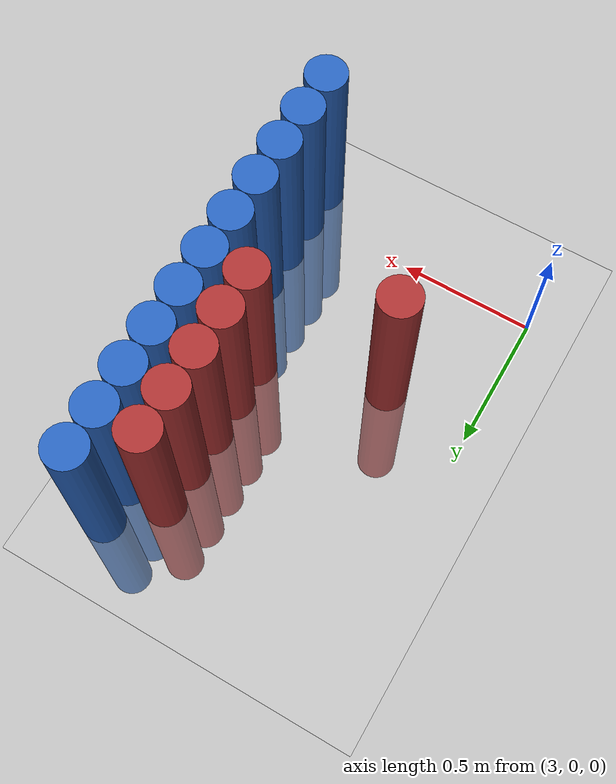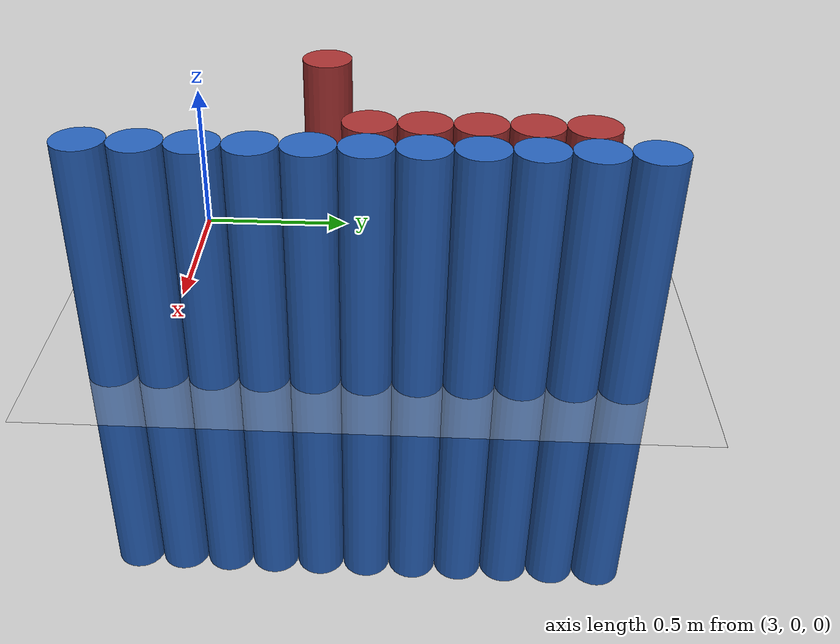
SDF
<sdf version="1.6">
 <world name="default">
  <model name="ground_plane">
   <static>1</static>
   <link name="link">
    <collision name="collision">
     <geometry><plane><normal>0 0 1</normal><size>100 100</size></plane></geometry>
     <surface><friction><ode><mu>100</mu><mu2>50</mu2></ode></friction></surface>
    </collision>
    <visual name="visual">
     <cast_shadows>0</cast_shadows>
     <geometry><plane><normal>0 0 1</normal><size>100 100</size></plane></geometry>
     <material>
      <script><uri>file://media/materials/scripts/gazebo.material</uri><name>Gazebo/Grey</name></script>
     </material>
    </visual>
   </link>
  </model>
  <model name="unit_cylinder_112">
   <static>1</static>
   <pose>3.925000 -0.125000 0.000000 0.000000 0.000000 0.000000</pose>
   <link name="link">
    <inertial>
     <mass>1</mass>
     <inertia><ixx>0.145833</ixx><ixy>0</ixy><ixz>0</ixz><iyy>0.145833</iyy><iyz>0</iyz><izz>0.125</izz></inertia>
    </inertial>
    <collision name="collision">
     <geometry><cylinder><radius>0.075000</radius><length>1.5</length></cylinder></geometry>
    </collision>
    <visual name="visual">
     <geometry><cylinder><radius>0.075000</radius><length>1.5</length></cylinder></geometry>
     <material>
      <ambient>0.152000 0.379000 0.720000 1</ambient>
      <diffuse>0.152000 0.379000 0.720000 1</diffuse>
     </material>
     <material>
      <script><name>Gazebo/Grey</name><uri>file://media/materials/scripts/gazebo.material</uri></script>
     </material>
    </visual>
   </link>
  </model>
  <model name="unit_cylinder_114">
   <static>1</static>
   <pose>3.925000 0.025000 0.000000 0.000000 0.000000 0.000000</pose>
   <link name="link">
    <inertial>
     <mass>1</mass>
     <inertia><ixx>0.145833</ixx><ixy>0</ixy><ixz>0</ixz><iyy>0.145833</iyy><iyz>0</iyz><izz>0.125</izz></inertia>
    </inertial>
    <collision name="collision">
     <geometry><cylinder><radius>0.075000</radius><length>1.5</length></cylinder></geometry>
    </collision>
    <visual name="visual">
     <geometry><cylinder><radius>0.075000</radius><length>1.5</length></cylinder></geometry>
     <material>
      <ambient>0.152000 0.379000 0.720000 1</ambient>
      <diffuse>0.152000 0.379000 0.720000 1</diffuse>
     </material>
     <material>
      <script><name>Gazebo/Grey</name><uri>file://media/materials/scripts/gazebo.material</uri></script>
     </material>
    </visual>
   </link>
  </model>
  <model name="unit_cylinder_116">
   <static>1</static>
   <pose>3.925000 0.175000 0.000000 0.000000 0.000000 0.000000</pose>
   <link name="link">
    <inertial>
     <mass>1</mass>
     <inertia><ixx>0.145833</ixx><ixy>0</ixy><ixz>0</ixz><iyy>0.145833</iyy><iyz>0</iyz><izz>0.125</izz></inertia>
    </inertial>
    <collision name="collision">
     <geometry><cylinder><radius>0.075000</radius><length>1.5</length></cylinder></geometry>
    </collision>
    <visual name="visual">
     <geometry><cylinder><radius>0.075000</radius><length>1.5</length></cylinder></geometry>
     <material>
      <ambient>0.152000 0.379000 0.720000 1</ambient>
      <diffuse>0.152000 0.379000 0.720000 1</diffuse>
     </material>
     <material>
      <script><name>Gazebo/Grey</name><uri>file://media/materials/scripts/gazebo.material</uri></script>
     </material>
    </visual>
   </link>
  </model>
  <model name="unit_cylinder_118">
   <static>1</static>
   <pose>3.925000 0.325000 0.000000 0.000000 0.000000 0.000000</pose>
   <link name="link">
    <inertial>
     <mass>1</mass>
     <inertia><ixx>0.145833</ixx><ixy>0</ixy><ixz>0</ixz><iyy>0.145833</iyy><iyz>0</iyz><izz>0.125</izz></inertia>
    </inertial>
    <collision name="collision">
     <geometry><cylinder><radius>0.075000</radius><length>1.5</length></cylinder></geometry>
    </collision>
    <visual name="visual">
     <geometry><cylinder><radius>0.075000</radius><length>1.5</length></cylinder></geometry>
     <material>
      <ambient>0.152000 0.379000 0.720000 1</ambient>
      <diffuse>0.152000 0.379000 0.720000 1</diffuse>
     </material>
     <material>
      <script><name>Gazebo/Grey</name><uri>file://media/materials/scripts/gazebo.material</uri></script>
     </material>
    </visual>
   </link>
  </model>
  <model name="unit_cylinder_120">
   <static>1</static>
   <pose>3.925000 0.475000 0.000000 0.000000 0.000000 0.000000</pose>
   <link name="link">
    <inertial>
     <mass>1</mass>
     <inertia><ixx>0.145833</ixx><ixy>0</ixy><ixz>0</ixz><iyy>0.145833</iyy><iyz>0</iyz><izz>0.125</izz></inertia>
    </inertial>
    <collision name="collision">
     <geometry><cylinder><radius>0.075000</radius><length>1.5</length></cylinder></geometry>
    </collision>
    <visual name="visual">
     <geometry><cylinder><radius>0.075000</radius><length>1.5</length></cylinder></geometry>
     <material>
      <ambient>0.152000 0.379000 0.720000 1</ambient>
      <diffuse>0.152000 0.379000 0.720000 1</diffuse>
     </material>
     <material>
      <script><name>Gazebo/Grey</name><uri>file://media/materials/scripts/gazebo.material</uri></script>
     </material>
    </visual>
   </link>
  </model>
  <model name="unit_cylinder_122">
   <static>1</static>
   <pose>3.925000 0.625000 0.000000 0.000000 0.000000 0.000000</pose>
   <link name="link">
    <inertial>
     <mass>1</mass>
     <inertia><ixx>0.145833</ixx><ixy>0</ixy><ixz>0</ixz><iyy>0.145833</iyy><iyz>0</iyz><izz>0.125</izz></inertia>
    </inertial>
    <collision name="collision">
     <geometry><cylinder><radius>0.075000</radius><length>1.5</length></cylinder></geometry>
    </collision>
    <visual name="visual">
     <geometry><cylinder><radius>0.075000</radius><length>1.5</length></cylinder></geometry>
     <material>
      <ambient>0.152000 0.379000 0.720000 1</ambient>
      <diffuse>0.152000 0.379000 0.720000 1</diffuse>
     </material>
     <material>
      <script><name>Gazebo/Grey</name><uri>file://media/materials/scripts/gazebo.material</uri></script>
     </material>
    </visual>
   </link>
  </model>
  <model name="unit_cylinder_124">
   <static>1</static>
   <pose>3.925000 0.775000 0.000000 0.000000 0.000000 0.000000</pose>
   <link name="link">
    <inertial>
     <mass>1</mass>
     <inertia><ixx>0.145833</ixx><ixy>0</ixy><ixz>0</ixz><iyy>0.145833</iyy><iyz>0</iyz><izz>0.125</izz></inertia>
    </inertial>
    <collision name="collision">
     <geometry><cylinder><radius>0.075000</radius><length>1.5</length></cylinder></geometry>
    </collision>
    <visual name="visual">
     <geometry><cylinder><radius>0.075000</radius><length>1.5</length></cylinder></geometry>
     <material>
      <ambient>0.152000 0.379000 0.720000 1</ambient>
      <diffuse>0.152000 0.379000 0.720000 1</diffuse>
     </material>
     <material>
      <script><name>Gazebo/Grey</name><uri>file://media/materials/scripts/gazebo.material</uri></script>
     </material>
    </visual>
   </link>
  </model>
  <model name="unit_cylinder_126">
   <static>1</static>
   <pose>3.925000 0.925000 0.000000 0.000000 0.000000 0.000000</pose>
   <link name="link">
    <inertial>
     <mass>1</mass>
     <inertia><ixx>0.145833</ixx><ixy>0</ixy><ixz>0</ixz><iyy>0.145833</iyy><iyz>0</iyz><izz>0.125</izz></inertia>
    </inertial>
    <collision name="collision">
     <geometry><cylinder><radius>0.075000</radius><length>1.5</length></cylinder></geometry>
    </collision>
    <visual name="visual">
     <geometry><cylinder><radius>0.075000</radius><length>1.5</length></cylinder></geometry>
     <material>
      <ambient>0.152000 0.379000 0.720000 1</ambient>
      <diffuse>0.152000 0.379000 0.720000 1</diffuse>
     </material>
     <material>
      <script><name>Gazebo/Grey</name><uri>file://media/materials/scripts/gazebo.material</uri></script>
     </material>
    </visual>
   </link>
  </model>
  <model name="unit_cylinder_128">
   <static>1</static>
   <pose>3.925000 1.075000 0.000000 0.000000 0.000000 0.000000</pose>
   <link name="link">
    <inertial>
     <mass>1</mass>
     <inertia><ixx>0.145833</ixx><ixy>0</ixy><ixz>0</ixz><iyy>0.145833</iyy><iyz>0</iyz><izz>0.125</izz></inertia>
    </inertial>
    <collision name="collision">
     <geometry><cylinder><radius>0.075000</radius><length>1.5</length></cylinder></geometry>
    </collision>
    <visual name="visual">
     <geometry><cylinder><radius>0.075000</radius><length>1.5</length></cylinder></geometry>
     <material>
      <ambient>0.152000 0.379000 0.720000 1</ambient>
      <diffuse>0.152000 0.379000 0.720000 1</diffuse>
     </material>
     <material>
      <script><name>Gazebo/Grey</name><uri>file://media/materials/scripts/gazebo.material</uri></script>
     </material>
    </visual>
   </link>
  </model>
  <model name="unit_cylinder_130">
   <static>1</static>
   <pose>3.925000 1.225000 0.000000 0.000000 0.000000 0.000000</pose>
   <link name="link">
    <inertial>
     <mass>1</mass>
     <inertia><ixx>0.145833</ixx><ixy>0</ixy><ixz>0</ixz><iyy>0.145833</iyy><iyz>0</iyz><izz>0.125</izz></inertia>
    </inertial>
    <collision name="collision">
     <geometry><cylinder><radius>0.075000</radius><length>1.5</length></cylinder></geometry>
    </collision>
    <visual name="visual">
     <geometry><cylinder><radius>0.075000</radius><length>1.5</length></cylinder></geometry>
     <material>
      <ambient>0.152000 0.379000 0.720000 1</ambient>
      <diffuse>0.152000 0.379000 0.720000 1</diffuse>
     </material>
     <material>
      <script><name>Gazebo/Grey</name><uri>file://media/materials/scripts/gazebo.material</uri></script>
     </material>
    </visual>
   </link>
  </model>
  <model name="unit_cylinder_132">
   <static>1</static>
   <pose>3.925000 1.375000 0.000000 0.000000 0.000000 0.000000</pose>
   <link name="link">
    <inertial>
     <mass>1</mass>
     <inertia><ixx>0.145833</ixx><ixy>0</ixy><ixz>0</ixz><iyy>0.145833</iyy><iyz>0</iyz><izz>0.125</izz></inertia>
    </inertial>
    <collision name="collision">
     <geometry><cylinder><radius>0.075000</radius><length>1.5</length></cylinder></geometry>
    </collision>
    <visual name="visual">
     <geometry><cylinder><radius>0.075000</radius><length>1.5</length></cylinder></geometry>
     <material>
      <ambient>0.152000 0.379000 0.720000 1</ambient>
      <diffuse>0.152000 0.379000 0.720000 1</diffuse>
     </material>
     <material>
      <script><name>Gazebo/Grey</name><uri>file://media/materials/scripts/gazebo.material</uri></script>
     </material>
    </visual>
   </link>
  </model>
  <model name="unit_cylinder_506">
   <static>1</static>
   <pose>3.325000 0.475000 0.000000 0.000000 0.000000 0.000000</pose>
   <link name="link">
    <inertial>
     <mass>1</mass>
     <inertia><ixx>0.145833</ixx><ixy>0</ixy><ixz>0</ixz><iyy>0.145833</iyy><iyz>0</iyz><izz>0.125</izz></inertia>
    </inertial>
    <collision name="collision">
     <geometry><cylinder><radius>0.075000</radius><length>1.5</length></cylinder></geometry>
    </collision>
    <visual name="visual">
     <geometry><cylinder><radius>0.075000</radius><length>1.5</length></cylinder></geometry>
     <material>
      <ambient>0.648000 0.192000 0.192000 1</ambient>
      <diffuse>0.648000 0.192000 0.192000 1</diffuse>
     </material>
     <material>
      <script><name>Gazebo/Grey</name><uri>file://media/materials/scripts/gazebo.material</uri></script>
     </material>
    </visual>
   </link>
  </model>
  <model name="unit_cylinder_520">
   <static>1</static>
   <pose>3.775000 0.625000 0.000000 0.000000 0.000000 0.000000</pose>
   <link name="link">
    <inertial>
     <mass>1</mass>
     <inertia><ixx>0.145833</ixx><ixy>0</ixy><ixz>0</ixz><iyy>0.145833</iyy><iyz>0</iyz><izz>0.125</izz></inertia>
    </inertial>
    <collision name="collision">
     <geometry><cylinder><radius>0.075000</radius><length>1.5</length></cylinder></geometry>
    </collision>
    <visual name="visual">
     <geometry><cylinder><radius>0.075000</radius><length>1.5</length></cylinder></geometry>
     <material>
      <ambient>0.648000 0.192000 0.192000 1</ambient>
      <diffuse>0.648000 0.192000 0.192000 1</diffuse>
     </material>
     <material>
      <script><name>Gazebo/Grey</name><uri>file://media/materials/scripts/gazebo.material</uri></script>
     </material>
    </visual>
   </link>
  </model>
  <model name="unit_cylinder_521">
   <static>1</static>
   <pose>3.775000 0.775000 0.000000 0.000000 0.000000 0.000000</pose>
   <link name="link">
    <inertial>
     <mass>1</mass>
     <inertia><ixx>0.145833</ixx><ixy>0</ixy><ixz>0</ixz><iyy>0.145833</iyy><iyz>0</iyz><izz>0.125</izz></inertia>
    </inertial>
    <collision name="collision">
     <geometry><cylinder><radius>0.075000</radius><length>1.5</length></cylinder></geometry>
    </collision>
    <visual name="visual">
     <geometry><cylinder><radius>0.075000</radius><length>1.5</length></cylinder></geometry>
     <material>
      <ambient>0.648000 0.192000 0.192000 1</ambient>
      <diffuse>0.648000 0.192000 0.192000 1</diffuse>
     </material>
     <material>
      <script><name>Gazebo/Grey</name><uri>file://media/materials/scripts/gazebo.material</uri></script>
     </material>
    </visual>
   </link>
  </model>
  <model name="unit_cylinder_522">
   <static>1</static>
   <pose>3.775000 0.925000 0.000000 0.000000 0.000000 0.000000</pose>
   <link name="link">
    <inertial>
     <mass>1</mass>
     <inertia><ixx>0.145833</ixx><ixy>0</ixy><ixz>0</ixz><iyy>0.145833</iyy><iyz>0</iyz><izz>0.125</izz></inertia>
    </inertial>
    <collision name="collision">
     <geometry><cylinder><radius>0.075000</radius><length>1.5</length></cylinder></geometry>
    </collision>
    <visual name="visual">
     <geometry><cylinder><radius>0.075000</radius><length>1.5</length></cylinder></geometry>
     <material>
      <ambient>0.648000 0.192000 0.192000 1</ambient>
      <diffuse>0.648000 0.192000 0.192000 1</diffuse>
     </material>
     <material>
      <script><name>Gazebo/Grey</name><uri>file://media/materials/scripts/gazebo.material</uri></script>
     </material>
    </visual>
   </link>
  </model>
  <model name="unit_cylinder_523">
   <static>1</static>
   <pose>3.775000 1.075000 0.000000 0.000000 0.000000 0.000000</pose>
   <link name="link">
    <inertial>
     <mass>1</mass>
     <inertia><ixx>0.145833</ixx><ixy>0</ixy><ixz>0</ixz><iyy>0.145833</iyy><iyz>0</iyz><izz>0.125</izz></inertia>
    </inertial>
    <collision name="collision">
     <geometry><cylinder><radius>0.075000</radius><length>1.5</length></cylinder></geometry>
    </collision>
    <visual name="visual">
     <geometry><cylinder><radius>0.075000</radius><length>1.5</length></cylinder></geometry>
     <material>
      <ambient>0.648000 0.192000 0.192000 1</ambient>
      <diffuse>0.648000 0.192000 0.192000 1</diffuse>
     </material>
     <material>
      <script><name>Gazebo/Grey</name><uri>file://media/materials/scripts/gazebo.material</uri></script>
     </material>
    </visual>
   </link>
  </model>
  <model name="unit_cylinder_524">
   <static>1</static>
   <pose>3.775000 1.225000 0.000000 0.000000 0.000000 0.000000</pose>
   <link name="link">
    <inertial>
     <mass>1</mass>
     <inertia><ixx>0.145833</ixx><ixy>0</ixy><ixz>0</ixz><iyy>0.145833</iyy><iyz>0</iyz><izz>0.125</izz></inertia>
    </inertial>
    <collision name="collision">
     <geometry><cylinder><radius>0.075000</radius><length>1.5</length></cylinder></geometry>
    </collision>
    <visual name="visual">
     <geometry><cylinder><radius>0.075000</radius><length>1.5</length></cylinder></geometry>
     <material>
      <ambient>0.648000 0.192000 0.192000 1</ambient>
      <diffuse>0.648000 0.192000 0.192000 1</diffuse>
     </material>
     <material>
      <script><name>Gazebo/Grey</name><uri>file://media/materials/scripts/gazebo.material</uri></script>
     </material>
    </visual>
   </link>
  </model>
  <model name="unit_cylinder_554">
   <static>1</static>
   <pose>3.925000 -0.125000 0.000000 0.000000 0.000000 0.000000</pose>
   <link name="link">
    <inertial>
     <mass>1</mass>
     <inertia><ixx>0.145833</ixx><ixy>0</ixy><ixz>0</ixz><iyy>0.145833</iyy><iyz>0</iyz><izz>0.125</izz></inertia>
    </inertial>
    <collision name="collision">
     <geometry><cylinder><radius>0.075000</radius><length>1.5</length></cylinder></geometry>
    </collision>
    <visual name="visual">
     <geometry><cylinder><radius>0.075000</radius><length>1.5</length></cylinder></geometry>
     <material>
      <ambient>0.152000 0.379000 0.720000 1</ambient>
      <diffuse>0.152000 0.379000 0.720000 1</diffuse>
     </material>
     <material>
      <script><name>Gazebo/Grey</name><uri>file://media/materials/scripts/gazebo.material</uri></script>
     </material>
    </visual>
   </link>
  </model>
  <model name="unit_cylinder_555">
   <static>1</static>
   <pose>3.925000 0.025000 0.000000 0.000000 0.000000 0.000000</pose>
   <link name="link">
    <inertial>
     <mass>1</mass>
     <inertia><ixx>0.145833</ixx><ixy>0</ixy><ixz>0</ixz><iyy>0.145833</iyy><iyz>0</iyz><izz>0.125</izz></inertia>
    </inertial>
    <collision name="collision">
     <geometry><cylinder><radius>0.075000</radius><length>1.5</length></cylinder></geometry>
    </collision>
    <visual name="visual">
     <geometry><cylinder><radius>0.075000</radius><length>1.5</length></cylinder></geometry>
     <material>
      <ambient>0.152000 0.379000 0.720000 1</ambient>
      <diffuse>0.152000 0.379000 0.720000 1</diffuse>
     </material>
     <material>
      <script><name>Gazebo/Grey</name><uri>file://media/materials/scripts/gazebo.material</uri></script>
     </material>
    </visual>
   </link>
  </model>
  <model name="unit_cylinder_556">
   <static>1</static>
   <pose>3.925000 0.175000 0.000000 0.000000 0.000000 0.000000</pose>
   <link name="link">
    <inertial>
     <mass>1</mass>
     <inertia><ixx>0.145833</ixx><ixy>0</ixy><ixz>0</ixz><iyy>0.145833</iyy><iyz>0</iyz><izz>0.125</izz></inertia>
    </inertial>
    <collision name="collision">
     <geometry><cylinder><radius>0.075000</radius><length>1.5</length></cylinder></geometry>
    </collision>
    <visual name="visual">
     <geometry><cylinder><radius>0.075000</radius><length>1.5</length></cylinder></geometry>
     <material>
      <ambient>0.152000 0.379000 0.720000 1</ambient>
      <diffuse>0.152000 0.379000 0.720000 1</diffuse>
     </material>
     <material>
      <script><name>Gazebo/Grey</name><uri>file://media/materials/scripts/gazebo.material</uri></script>
     </material>
    </visual>
   </link>
  </model>
  <model name="unit_cylinder_557">
   <static>1</static>
   <pose>3.925000 0.325000 0.000000 0.000000 0.000000 0.000000</pose>
   <link name="link">
    <inertial>
     <mass>1</mass>
     <inertia><ixx>0.145833</ixx><ixy>0</ixy><ixz>0</ixz><iyy>0.145833</iyy><iyz>0</iyz><izz>0.125</izz></inertia>
    </inertial>
    <collision name="collision">
     <geometry><cylinder><radius>0.075000</radius><length>1.5</length></cylinder></geometry>
    </collision>
    <visual name="visual">
     <geometry><cylinder><radius>0.075000</radius><length>1.5</length></cylinder></geometry>
     <material>
      <ambient>0.152000 0.379000 0.720000 1</ambient>
      <diffuse>0.152000 0.379000 0.720000 1</diffuse>
     </material>
     <material>
      <script><name>Gazebo/Grey</name><uri>file://media/materials/scripts/gazebo.material</uri></script>
     </material>
    </visual>
   </link>
  </model>
  <model name="unit_cylinder_558">
   <static>1</static>
   <pose>3.925000 0.475000 0.000000 0.000000 0.000000 0.000000</pose>
   <link name="link">
    <inertial>
     <mass>1</mass>
     <inertia><ixx>0.145833</ixx><ixy>0</ixy><ixz>0</ixz><iyy>0.145833</iyy><iyz>0</iyz><izz>0.125</izz></inertia>
    </inertial>
    <collision name="collision">
     <geometry><cylinder><radius>0.075000</radius><length>1.5</length></cylinder></geometry>
    </collision>
    <visual name="visual">
     <geometry><cylinder><radius>0.075000</radius><length>1.5</length></cylinder></geometry>
     <material>
      <ambient>0.152000 0.379000 0.720000 1</ambient>
      <diffuse>0.152000 0.379000 0.720000 1</diffuse>
     </material>
     <material>
      <script><name>Gazebo/Grey</name><uri>file://media/materials/scripts/gazebo.material</uri></script>
     </material>
    </visual>
   </link>
  </model>
  <model name="unit_cylinder_559">
   <static>1</static>
   <pose>3.925000 0.625000 0.000000 0.000000 0.000000 0.000000</pose>
   <link name="link">
    <inertial>
     <mass>1</mass>
     <inertia><ixx>0.145833</ixx><ixy>0</ixy><ixz>0</ixz><iyy>0.145833</iyy><iyz>0</iyz><izz>0.125</izz></inertia>
    </inertial>
    <collision name="collision">
     <geometry><cylinder><radius>0.075000</radius><length>1.5</length></cylinder></geometry>
    </collision>
    <visual name="visual">
     <geometry><cylinder><radius>0.075000</radius><length>1.5</length></cylinder></geometry>
     <material>
      <ambient>0.152000 0.379000 0.720000 1</ambient>
      <diffuse>0.152000 0.379000 0.720000 1</diffuse>
     </material>
     <material>
      <script><name>Gazebo/Grey</name><uri>file://media/materials/scripts/gazebo.material</uri></script>
     </material>
    </visual>
   </link>
  </model>
  <model name="unit_cylinder_560">
   <static>1</static>
   <pose>3.925000 0.775000 0.000000 0.000000 0.000000 0.000000</pose>
   <link name="link">
    <inertial>
     <mass>1</mass>
     <inertia><ixx>0.145833</ixx><ixy>0</ixy><ixz>0</ixz><iyy>0.145833</iyy><iyz>0</iyz><izz>0.125</izz></inertia>
    </inertial>
    <collision name="collision">
     <geometry><cylinder><radius>0.075000</radius><length>1.5</length></cylinder></geometry>
    </collision>
    <visual name="visual">
     <geometry><cylinder><radius>0.075000</radius><length>1.5</length></cylinder></geometry>
     <material>
      <ambient>0.152000 0.379000 0.720000 1</ambient>
      <diffuse>0.152000 0.379000 0.720000 1</diffuse>
     </material>
     <material>
      <script><name>Gazebo/Grey</name><uri>file://media/materials/scripts/gazebo.material</uri></script>
     </material>
    </visual>
   </link>
  </model>
  <model name="unit_cylinder_561">
   <static>1</static>
   <pose>3.925000 0.925000 0.000000 0.000000 0.000000 0.000000</pose>
   <link name="link">
    <inertial>
     <mass>1</mass>
     <inertia><ixx>0.145833</ixx><ixy>0</ixy><ixz>0</ixz><iyy>0.145833</iyy><iyz>0</iyz><izz>0.125</izz></inertia>
    </inertial>
    <collision name="collision">
     <geometry><cylinder><radius>0.075000</radius><length>1.5</length></cylinder></geometry>
    </collision>
    <visual name="visual">
     <geometry><cylinder><radius>0.075000</radius><length>1.5</length></cylinder></geometry>
     <material>
      <ambient>0.152000 0.379000 0.720000 1</ambient>
      <diffuse>0.152000 0.379000 0.720000 1</diffuse>
     </material>
     <material>
      <script><name>Gazebo/Grey</name><uri>file://media/materials/scripts/gazebo.material</uri></script>
     </material>
    </visual>
   </link>
  </model>
  <model name="unit_cylinder_562">
   <static>1</static>
   <pose>3.925000 1.075000 0.000000 0.000000 0.000000 0.000000</pose>
   <link name="link">
    <inertial>
     <mass>1</mass>
     <inertia><ixx>0.145833</ixx><ixy>0</ixy><ixz>0</ixz><iyy>0.145833</iyy><iyz>0</iyz><izz>0.125</izz></inertia>
    </inertial>
    <collision name="collision">
     <geometry><cylinder><radius>0.075000</radius><length>1.5</length></cylinder></geometry>
    </collision>
    <visual name="visual">
     <geometry><cylinder><radius>0.075000</radius><length>1.5</length></cylinder></geometry>
     <material>
      <ambient>0.152000 0.379000 0.720000 1</ambient>
      <diffuse>0.152000 0.379000 0.720000 1</diffuse>
     </material>
     <material>
      <script><name>Gazebo/Grey</name><uri>file://media/materials/scripts/gazebo.material</uri></script>
     </material>
    </visual>
   </link>
  </model>
  <model name="unit_cylinder_563">
   <static>1</static>
   <pose>3.925000 1.225000 0.000000 0.000000 0.000000 0.000000</pose>
   <link name="link">
    <inertial>
     <mass>1</mass>
     <inertia><ixx>0.145833</ixx><ixy>0</ixy><ixz>0</ixz><iyy>0.145833</iyy><iyz>0</iyz><izz>0.125</izz></inertia>
    </inertial>
    <collision name="collision">
     <geometry><cylinder><radius>0.075000</radius><length>1.5</length></cylinder></geometry>
    </collision>
    <visual name="visual">
     <geometry><cylinder><radius>0.075000</radius><length>1.5</length></cylinder></geometry>
     <material>
      <ambient>0.152000 0.379000 0.720000 1</ambient>
      <diffuse>0.152000 0.379000 0.720000 1</diffuse>
     </material>
     <material>
      <script><name>Gazebo/Grey</name><uri>file://media/materials/scripts/gazebo.material</uri></script>
     </material>
    </visual>
   </link>
  </model>
 </world>
</sdf>
